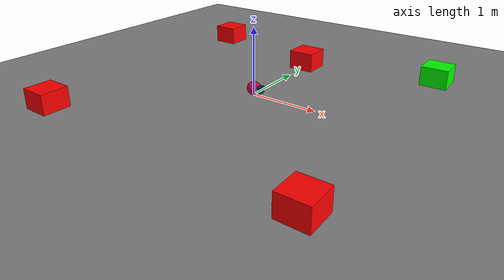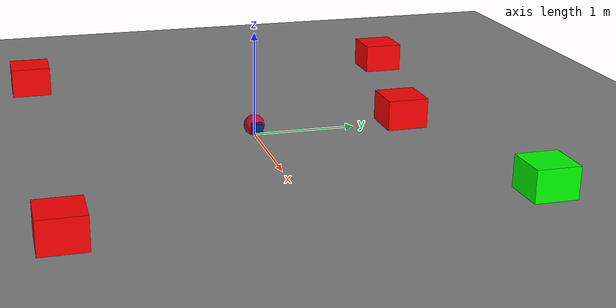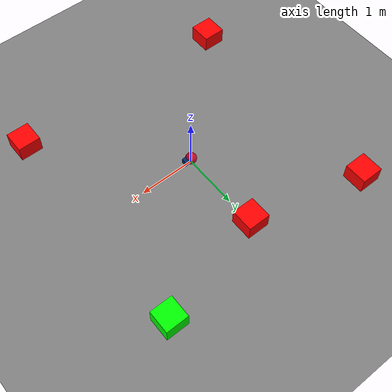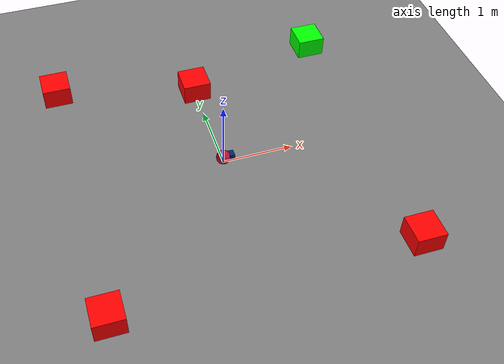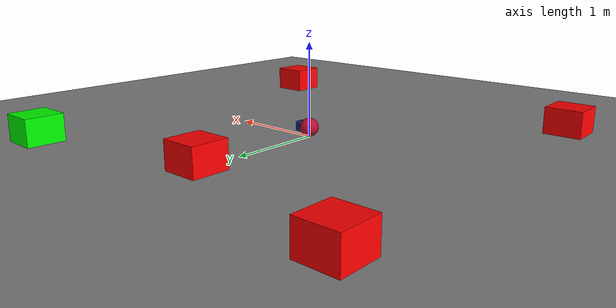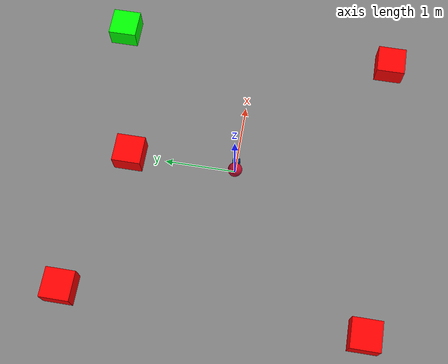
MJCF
<mujoco model="point_hazard_goal">
  <include file="point.xml"/>

  <asset>
    <material name="hazard" rgba="0.9 0.3 0.3 1"/>
    <material name="goal" rgba="0.3 0.9 0.3 1"/>
  </asset>

  <worldbody>
      <!-- Goal (green box) -->
      <body name="goal" pos="2 2 0.09" mocap="true">
        <geom type="box" name="goal" size="0.2 0.2 0.2" condim="3"
       friction="1 .03 .003" rgba="0 1 0 1" contype="2" conaffinity="1" solref="0.01 1"/>
      </body>

      <!-- Hazards (red boxes) -->
      <body name="hazard1" pos="-2 2 0.09" mocap="true">
        <geom type="box" name="hazard1" size="0.2 0.2 0.2" condim="3"
       friction="1 .03 .003" rgba="1 0 0 1" contype="2" conaffinity="1" solref="0.01 1"/>
      </body>

      <body name="hazard2" pos="2 -2 0.09" mocap="true">
        <geom type="box" name="hazard2" size="0.2 0.2 0.2" condim="3"
       friction="1 .03 .003" rgba="1 0 0 1" contype="2" conaffinity="1" solref="0.01 1"/>
      </body>

      <body name="hazard3" pos="-2 -2 0.09" mocap="true">
        <geom type="box" name="hazard3" size="0.2 0.2 0.2" condim="3"
       friction="1 .03 .003" rgba="1 0 0 1" contype="2" conaffinity="1" solref="0.01 1"/>
      </body>

      <body name="hazard4" pos="0 1.5 0.09" mocap="true">
        <geom type="box" name="hazard4" size="0.2 0.2 0.2" condim="3"
       friction="1 .03 .003" rgba="1 0 0 1" contype="2" conaffinity="1" solref="0.01 1"/>
      </body>
   </worldbody>
</mujoco>

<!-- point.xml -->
<mujoco>
  <size njmax="3000" nconmax="1000"/>
  <option timestep="0.002"/>
  <statistic meansize="0.23" extent="3.96"/>
  <default>
    <geom condim="6" density="1"/>
    <joint damping=".001"/>
    <motor ctrlrange="-1 1" ctrllimited="true" forcerange="-.05 .05" forcelimited="true"/>
    <velocity ctrlrange="-1 1" ctrllimited="true" forcerange="-.05 .05" forcelimited="true"/>
    <site size="0.032" type="sphere"/>
  </default>
  <worldbody>
    <geom name="floor" size="10 10 0.1" type="plane" condim="6"/>
    <body name="agent" pos="0 0 .1">
      <camera name="vision" pos="0 0 .15" xyaxes="0 -1 0 .4 0 1" fovy="90"/>
      <camera name="vision_back" pos="0 0 .15" xyaxes="0 1 0 0 0 1" fovy="90"/>
      <joint type="slide" axis="1 0 0" name="x" damping="0.01"/>
      <joint type="slide" axis="0 1 0" name="y" damping="0.01"/>
      <joint type="hinge" axis="0 0 1" name="z" damping="0.005"/>
      <geom name="agent" type="sphere" size=".1" friction="1 0.01 0.01" rgba="0.7412 0.0431 0.1843 1"/>
      <geom name="pointarrow" pos="0.1 0 0" size="0.05 0.05 0.05" type="box" rgba="0.0039 0.1529 0.3961 1"/>
      <site name="agent" rgba="1 0 0 .1"/>
    </body>
  </worldbody>
  <sensor>
    <!-- Used for observation -->
    <accelerometer site="agent" name="accelerometer"/>
    <velocimeter site="agent" name="velocimeter"/>
    <gyro site="agent" name="gyro"/>
    <magnetometer site="agent" name="magnetometer"/>

    <!-- Used for intrinsic constraints -->
    <subtreecom body="agent" name="subtreecom"/>
    <subtreelinvel body="agent" name="subtreelinvel"/>
    <subtreeangmom body="agent" name="subtreeangmom"/>
  </sensor>
  <actuator>
    <motor gear="0.3 0 0 0 0 0" site="agent" name="x"/>
    <velocity gear="0.3" jointinparent="z" name="z"/>
  </actuator>
</mujoco>
